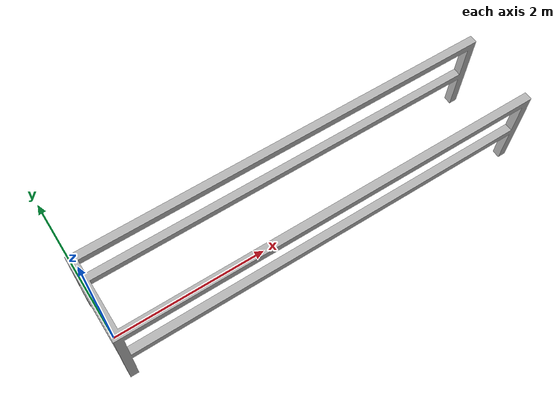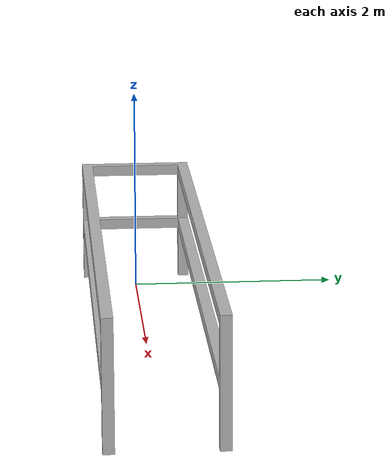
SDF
<?xml version="1.0" ?>
<sdf version="1.5">
  <model name="Cart Corral">
    <static>true</static>
    <link name="link">
      <collision name="collision">
        <geometry>
          <mesh>
            <uri>meshes/cart_corral.stl</uri>
            <scale>0.001 0.001 0.001</scale>
          </mesh>
        </geometry>
      </collision>
      <visual name="visual">
        <geometry>
          <mesh>
            <uri>meshes/cart_corral.stl</uri>
            <scale>0.001 0.001 0.001</scale>
          </mesh>
        </geometry>
        <material>
            <color rgba="0.7 0.7 0.7 1"/>
        </material>
      </visual>
    </link>
  </model>
</sdf>
